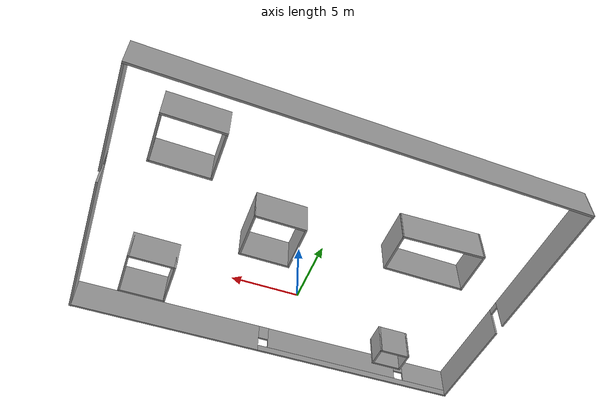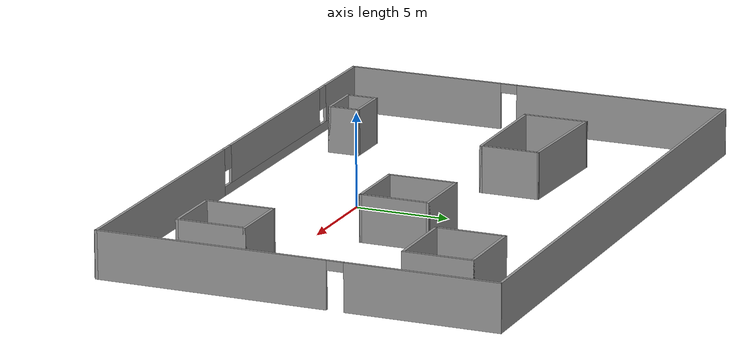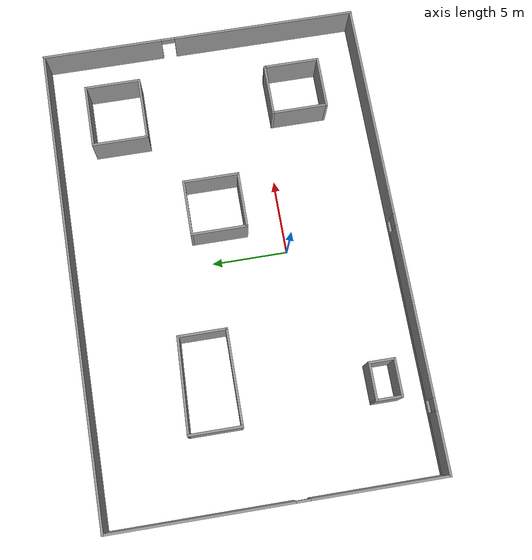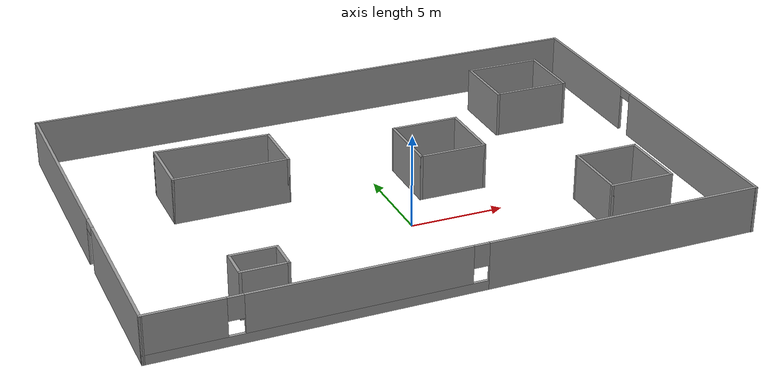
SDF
<?xml version='1.0'?>
<sdf version='1.7'>
  <model name='test_barn1'>
    <pose>-0.174962 3.52054 0 0 -0 0</pose>
    <link name='Wall_10'>
      <pose>15.6549 -0.010057 0 0 -0 -1.5708</pose>
      <visual name='Wall_10_Visual_0'>
        <pose>-6.58638 0 1.25 0 -0 0</pose>
        <geometry>
          <box>
            <size>8.07725 0.15 2.5</size>
          </box>
        </geometry>
        <material>
          <script>
            <uri>file://media/materials/scripts/gazebo.material</uri>
            <name>Gazebo/Grey</name>
          </script>
          <ambient>1 1 1 1</ambient>
        </material>
        <meta>
          <layer>0</layer>
        </meta>
      </visual>
      <collision name='Wall_10_Collision_0'>
        <geometry>
          <box>
            <size>8.07725 0.15 2.5</size>
          </box>
        </geometry>
        <pose>-6.58638 0 1.25 0 -0 0</pose>
      </collision>
      <visual name='Wall_10_Visual_1'>
        <pose>4.48862 0 1.25 0 -0 0</pose>
        <geometry>
          <box>
            <size>12.2728 0.15 2.5</size>
          </box>
        </geometry>
        <material>
          <script>
            <uri>file://media/materials/scripts/gazebo.material</uri>
            <name>Gazebo/Grey</name>
          </script>
          <ambient>1 1 1 1</ambient>
        </material>
        <meta>
          <layer>0</layer>
        </meta>
      </visual>
      <collision name='Wall_10_Collision_1'>
        <geometry>
          <box>
            <size>12.2728 0.15 2.5</size>
          </box>
        </geometry>
        <pose>4.48862 0 1.25 0 -0 0</pose>
      </collision>
      <visual name='Wall_10_Visual_2'>
        <pose>-2.09775 0 2.25 0 -0 0</pose>
        <geometry>
          <box>
            <size>0.9 0.15 0.5</size>
          </box>
        </geometry>
        <material>
          <script>
            <uri>file://media/materials/scripts/gazebo.material</uri>
            <name>Gazebo/Grey</name>
          </script>
          <ambient>1 1 1 1</ambient>
        </material>
        <meta>
          <layer>0</layer>
        </meta>
      </visual>
      <collision name='Wall_10_Collision_2'>
        <geometry>
          <box>
            <size>0.9 0.15 0.5</size>
          </box>
        </geometry>
        <pose>-2.09775 0 2.25 0 -0 0</pose>
      </collision>
    </link>
    <link name='Wall_11'>
      <pose>-0 -10.55 0 0 -0 -3.14095</pose>
      <visual name='Wall_11_Visual_0'>
        <pose>-8.38086 0 1.25 0 -0 0</pose>
        <geometry>
          <box>
            <size>14.6981 0.15 2.5</size>
          </box>
        </geometry>
        <material>
          <script>
            <uri>file://media/materials/scripts/gazebo.material</uri>
            <name>Gazebo/Grey</name>
          </script>
          <ambient>1 1 1 1</ambient>
        </material>
        <meta>
          <layer>0</layer>
        </meta>
      </visual>
      <collision name='Wall_11_Collision_0'>
        <geometry>
          <box>
            <size>14.6981 0.15 2.5</size>
          </box>
        </geometry>
        <pose>-8.38086 0 1.25 0 -0 0</pose>
      </collision>
      <visual name='Wall_11_Visual_1'>
        <pose>7.34903 0 0.25 0 -0 0</pose>
        <geometry>
          <box>
            <size>16.7617 0.15 0.5</size>
          </box>
        </geometry>
        <material>
          <script>
            <uri>file://media/materials/scripts/gazebo.material</uri>
            <name>Gazebo/Grey</name>
          </script>
          <ambient>1 1 1 1</ambient>
        </material>
        <meta>
          <layer>0</layer>
        </meta>
      </visual>
      <collision name='Wall_11_Collision_1'>
        <geometry>
          <box>
            <size>16.7617 0.15 0.5</size>
          </box>
        </geometry>
        <pose>7.34903 0 0.25 0 -0 0</pose>
      </collision>
      <visual name='Wall_11_Visual_2'>
        <pose>5.3519 0 1.5 0 -0 0</pose>
        <geometry>
          <box>
            <size>11.1675 0.15 2</size>
          </box>
        </geometry>
        <material>
          <script>
            <uri>file://media/materials/scripts/gazebo.material</uri>
            <name>Gazebo/Grey</name>
          </script>
          <ambient>1 1 1 1</ambient>
        </material>
        <meta>
          <layer>0</layer>
        </meta>
      </visual>
      <collision name='Wall_11_Collision_2'>
        <geometry>
          <box>
            <size>11.1675 0.15 2</size>
          </box>
        </geometry>
        <pose>5.3519 0 1.5 0 -0 0</pose>
      </collision>
      <visual name='Wall_11_Visual_3'>
        <pose>13.7328 0 1.5 0 -0 0</pose>
        <geometry>
          <box>
            <size>3.99426 0.15 2</size>
          </box>
        </geometry>
        <material>
          <script>
            <uri>file://media/materials/scripts/gazebo.material</uri>
            <name>Gazebo/Grey</name>
          </script>
          <ambient>1 1 1 1</ambient>
        </material>
        <meta>
          <layer>0</layer>
        </meta>
      </visual>
      <collision name='Wall_11_Collision_3'>
        <geometry>
          <box>
            <size>3.99426 0.15 2</size>
          </box>
        </geometry>
        <pose>13.7328 0 1.5 0 -0 0</pose>
      </collision>
      <visual name='Wall_11_Visual_4'>
        <pose>-0.631828 0 1.9 0 -0 0</pose>
        <geometry>
          <box>
            <size>0.8 0.15 1.2</size>
          </box>
        </geometry>
        <material>
          <script>
            <uri>file://media/materials/scripts/gazebo.material</uri>
            <name>Gazebo/Grey</name>
          </script>
          <ambient>1 1 1 1</ambient>
        </material>
        <meta>
          <layer>0</layer>
        </meta>
      </visual>
      <collision name='Wall_11_Collision_4'>
        <geometry>
          <box>
            <size>0.8 0.15 1.2</size>
          </box>
        </geometry>
        <pose>-0.631828 0 1.9 0 -0 0</pose>
      </collision>
      <visual name='Wall_11_Visual_5'>
        <pose>11.3356 0 1.9 0 -0 0</pose>
        <geometry>
          <box>
            <size>0.8 0.15 1.2</size>
          </box>
        </geometry>
        <material>
          <script>
            <uri>file://media/materials/scripts/gazebo.material</uri>
            <name>Gazebo/Grey</name>
          </script>
          <ambient>1 1 1 1</ambient>
        </material>
        <meta>
          <layer>0</layer>
        </meta>
      </visual>
      <collision name='Wall_11_Collision_5'>
        <geometry>
          <box>
            <size>0.8 0.15 1.2</size>
          </box>
        </geometry>
        <pose>11.3356 0 1.9 0 -0 0</pose>
      </collision>
    </link>
    <link name='Wall_12'>
      <pose>-15.6549 -0.010057 0 0 -0 1.5708</pose>
      <visual name='Wall_12_Visual_0'>
        <pose>-6.31896 0 1.25 0 -0 0</pose>
        <geometry>
          <box>
            <size>8.61208 0.15 2.5</size>
          </box>
        </geometry>
        <material>
          <script>
            <uri>file://media/materials/scripts/gazebo.material</uri>
            <name>Gazebo/Grey</name>
          </script>
          <ambient>1 1 1 1</ambient>
        </material>
        <meta>
          <layer>0</layer>
        </meta>
      </visual>
      <collision name='Wall_12_Collision_0'>
        <geometry>
          <box>
            <size>8.61208 0.15 2.5</size>
          </box>
        </geometry>
        <pose>-6.31896 0 1.25 0 -0 0</pose>
      </collision>
      <visual name='Wall_12_Visual_1'>
        <pose>4.75604 0 1.25 0 -0 0</pose>
        <geometry>
          <box>
            <size>11.7379 0.15 2.5</size>
          </box>
        </geometry>
        <material>
          <script>
            <uri>file://media/materials/scripts/gazebo.material</uri>
            <name>Gazebo/Grey</name>
          </script>
          <ambient>1 1 1 1</ambient>
        </material>
        <meta>
          <layer>0</layer>
        </meta>
      </visual>
      <collision name='Wall_12_Collision_1'>
        <geometry>
          <box>
            <size>11.7379 0.15 2.5</size>
          </box>
        </geometry>
        <pose>4.75604 0 1.25 0 -0 0</pose>
      </collision>
      <visual name='Wall_12_Visual_2'>
        <pose>-1.56292 0 2.25 0 -0 0</pose>
        <geometry>
          <box>
            <size>0.9 0.15 0.5</size>
          </box>
        </geometry>
        <material>
          <script>
            <uri>file://media/materials/scripts/gazebo.material</uri>
            <name>Gazebo/Grey</name>
          </script>
          <ambient>1 1 1 1</ambient>
        </material>
        <meta>
          <layer>0</layer>
        </meta>
      </visual>
      <collision name='Wall_12_Collision_2'>
        <geometry>
          <box>
            <size>0.9 0.15 0.5</size>
          </box>
        </geometry>
        <pose>-1.56292 0 2.25 0 -0 0</pose>
      </collision>
    </link>
    <link name='Wall_14'>
      <collision name='Wall_14_Collision'>
        <geometry>
          <box>
            <size>2.5 0.15 2.5</size>
          </box>
        </geometry>
        <pose>0 0 1.25 0 -0 0</pose>
      </collision>
      <visual name='Wall_14_Visual'>
        <pose>0 0 1.25 0 -0 0</pose>
        <geometry>
          <box>
            <size>2.5 0.15 2.5</size>
          </box>
        </geometry>
        <material>
          <script>
            <uri>file://media/materials/scripts/gazebo.material</uri>
            <name>Gazebo/Grey</name>
          </script>
          <ambient>1 1 1 1</ambient>
        </material>
        <meta>
          <layer>0</layer>
        </meta>
      </visual>
      <pose>-9.35278 -7.07648 0 0 -0 0</pose>
    </link>
    <link name='Wall_15'>
      <collision name='Wall_15_Collision'>
        <geometry>
          <box>
            <size>1.75 0.15 2.5</size>
          </box>
        </geometry>
        <pose>0 0 1.25 0 -0 0</pose>
      </collision>
      <visual name='Wall_15_Visual'>
        <pose>0 0 1.25 0 -0 0</pose>
        <geometry>
          <box>
            <size>1.75 0.15 2.5</size>
          </box>
        </geometry>
        <material>
          <script>
            <uri>file://media/materials/scripts/gazebo.material</uri>
            <name>Gazebo/Grey</name>
          </script>
          <ambient>1 1 1 1</ambient>
        </material>
        <meta>
          <layer>0</layer>
        </meta>
      </visual>
      <pose>-8.17778 -7.87648 0 0 -0 -1.5708</pose>
    </link>
    <link name='Wall_16'>
      <collision name='Wall_16_Collision'>
        <geometry>
          <box>
            <size>2.5 0.15 2.5</size>
          </box>
        </geometry>
        <pose>0 0 1.25 0 -0 0</pose>
      </collision>
      <visual name='Wall_16_Visual'>
        <pose>0 0 1.25 0 -0 0</pose>
        <geometry>
          <box>
            <size>2.5 0.15 2.5</size>
          </box>
        </geometry>
        <material>
          <script>
            <uri>file://media/materials/scripts/gazebo.material</uri>
            <name>Gazebo/Grey</name>
          </script>
          <ambient>1 1 1 1</ambient>
        </material>
        <meta>
          <layer>0</layer>
        </meta>
      </visual>
      <pose>-9.35278 -8.67647 0 0 -0 3.14159</pose>
    </link>
    <link name='Wall_17'>
      <collision name='Wall_17_Collision'>
        <geometry>
          <box>
            <size>1.75 0.15 2.5</size>
          </box>
        </geometry>
        <pose>0 0 1.25 0 -0 0</pose>
      </collision>
      <visual name='Wall_17_Visual'>
        <pose>0 0 1.25 0 -0 0</pose>
        <geometry>
          <box>
            <size>1.75 0.15 2.5</size>
          </box>
        </geometry>
        <material>
          <script>
            <uri>file://media/materials/scripts/gazebo.material</uri>
            <name>Gazebo/Grey</name>
          </script>
          <ambient>1 1 1 1</ambient>
        </material>
        <meta>
          <layer>0</layer>
        </meta>
      </visual>
      <pose>-10.5278 -7.87648 0 0 -0 1.5708</pose>
    </link>
    <link name='Wall_19'>
      <collision name='Wall_19_Collision'>
        <geometry>
          <box>
            <size>3.75 0.15 2.5</size>
          </box>
        </geometry>
        <pose>0 0 1.25 0 -0 0</pose>
      </collision>
      <visual name='Wall_19_Visual'>
        <pose>0 0 1.25 0 -0 0</pose>
        <geometry>
          <box>
            <size>3.75 0.15 2.5</size>
          </box>
        </geometry>
        <material>
          <script>
            <uri>file://media/materials/scripts/gazebo.material</uri>
            <name>Gazebo/Grey</name>
          </script>
          <ambient>1 1 1 1</ambient>
        </material>
        <meta>
          <layer>0</layer>
        </meta>
      </visual>
      <pose>1.75823 0.750306 0 0 -0 -1.5708</pose>
    </link>
    <link name='Wall_20'>
      <collision name='Wall_20_Collision'>
        <geometry>
          <box>
            <size>3.75 0.15 2.5</size>
          </box>
        </geometry>
        <pose>0 0 1.25 0 -0 0</pose>
      </collision>
      <visual name='Wall_20_Visual'>
        <pose>0 0 1.25 0 -0 0</pose>
        <geometry>
          <box>
            <size>3.75 0.15 2.5</size>
          </box>
        </geometry>
        <material>
          <script>
            <uri>file://media/materials/scripts/gazebo.material</uri>
            <name>Gazebo/Grey</name>
          </script>
          <ambient>1 1 1 1</ambient>
        </material>
        <meta>
          <layer>0</layer>
        </meta>
      </visual>
      <pose>3.55823 -1.04969 0 0 -0 0</pose>
    </link>
    <link name='Wall_21'>
      <collision name='Wall_21_Collision'>
        <geometry>
          <box>
            <size>3.75 0.15 2.5</size>
          </box>
        </geometry>
        <pose>0 0 1.25 0 -0 0</pose>
      </collision>
      <visual name='Wall_21_Visual'>
        <pose>0 0 1.25 0 -0 0</pose>
        <geometry>
          <box>
            <size>3.75 0.15 2.5</size>
          </box>
        </geometry>
        <material>
          <script>
            <uri>file://media/materials/scripts/gazebo.material</uri>
            <name>Gazebo/Grey</name>
          </script>
          <ambient>1 1 1 1</ambient>
        </material>
        <meta>
          <layer>0</layer>
        </meta>
      </visual>
      <pose>5.35823 0.750306 0 0 -0 1.5708</pose>
    </link>
    <link name='Wall_22'>
      <collision name='Wall_22_Collision'>
        <geometry>
          <box>
            <size>3.75 0.15 2.5</size>
          </box>
        </geometry>
        <pose>0 0 1.25 0 -0 0</pose>
      </collision>
      <visual name='Wall_22_Visual'>
        <pose>0 0 1.25 0 -0 0</pose>
        <geometry>
          <box>
            <size>3.75 0.15 2.5</size>
          </box>
        </geometry>
        <material>
          <script>
            <uri>file://media/materials/scripts/gazebo.material</uri>
            <name>Gazebo/Grey</name>
          </script>
          <ambient>1 1 1 1</ambient>
        </material>
        <meta>
          <layer>0</layer>
        </meta>
      </visual>
      <pose>3.55823 2.55031 0 0 -0 3.14159</pose>
    </link>
    <link name='Wall_24'>
      <collision name='Wall_24_Collision'>
        <geometry>
          <box>
            <size>3.5 0.15 2.5</size>
          </box>
        </geometry>
        <pose>0 0 1.25 0 -0 0</pose>
      </collision>
      <visual name='Wall_24_Visual'>
        <pose>0 0 1.25 0 -0 0</pose>
        <geometry>
          <box>
            <size>3.5 0.15 2.5</size>
          </box>
        </geometry>
        <material>
          <script>
            <uri>file://media/materials/scripts/gazebo.material</uri>
            <name>Gazebo/Grey</name>
          </script>
          <ambient>1 1 1 1</ambient>
        </material>
        <meta>
          <layer>0</layer>
        </meta>
      </visual>
      <pose>-10.7524 2.98723 0 0 -0 -1.5708</pose>
    </link>
    <link name='Wall_25'>
      <collision name='Wall_25_Collision'>
        <geometry>
          <box>
            <size>6.25 0.15 2.5</size>
          </box>
        </geometry>
        <pose>0 0 1.25 0 -0 0</pose>
      </collision>
      <visual name='Wall_25_Visual'>
        <pose>0 0 1.25 0 -0 0</pose>
        <geometry>
          <box>
            <size>6.25 0.15 2.5</size>
          </box>
        </geometry>
        <material>
          <script>
            <uri>file://media/materials/scripts/gazebo.material</uri>
            <name>Gazebo/Grey</name>
          </script>
          <ambient>1 1 1 1</ambient>
        </material>
        <meta>
          <layer>0</layer>
        </meta>
      </visual>
      <pose>-7.70241 1.31223 0 0 -0 0</pose>
    </link>
    <link name='Wall_26'>
      <collision name='Wall_26_Collision'>
        <geometry>
          <box>
            <size>3.25 0.15 2.5</size>
          </box>
        </geometry>
        <pose>0 0 1.25 0 -0 0</pose>
      </collision>
      <visual name='Wall_26_Visual'>
        <pose>0 0 1.25 0 -0 0</pose>
        <geometry>
          <box>
            <size>3.25 0.15 2.5</size>
          </box>
        </geometry>
        <material>
          <script>
            <uri>file://media/materials/scripts/gazebo.material</uri>
            <name>Gazebo/Grey</name>
          </script>
          <ambient>1 1 1 1</ambient>
        </material>
        <meta>
          <layer>0</layer>
        </meta>
      </visual>
      <pose>-4.65241 2.86223 0 0 -0 1.5708</pose>
    </link>
    <link name='Wall_27'>
      <collision name='Wall_27_Collision'>
        <geometry>
          <box>
            <size>6.25512 0.15 2.5</size>
          </box>
        </geometry>
        <pose>0 0 1.25 0 -0 0</pose>
      </collision>
      <visual name='Wall_27_Visual'>
        <pose>0 0 1.25 0 -0 0</pose>
        <geometry>
          <box>
            <size>6.25512 0.15 2.5</size>
          </box>
        </geometry>
        <material>
          <script>
            <uri>file://media/materials/scripts/gazebo.material</uri>
            <name>Gazebo/Grey</name>
          </script>
          <ambient>1 1 1 1</ambient>
        </material>
        <meta>
          <layer>0</layer>
        </meta>
      </visual>
      <pose>-7.70241 4.53723 0 0 -0 3.10063</pose>
    </link>
    <link name='Wall_29'>
      <collision name='Wall_29_Collision'>
        <geometry>
          <box>
            <size>3.75 0.15 2.5</size>
          </box>
        </geometry>
        <pose>0 0 1.25 0 -0 0</pose>
      </collision>
      <visual name='Wall_29_Visual'>
        <pose>0 0 1.25 0 -0 0</pose>
        <geometry>
          <box>
            <size>3.75 0.15 2.5</size>
          </box>
        </geometry>
        <material>
          <script>
            <uri>file://media/materials/scripts/gazebo.material</uri>
            <name>Gazebo/Grey</name>
          </script>
          <ambient>1 1 1 1</ambient>
        </material>
        <meta>
          <layer>0</layer>
        </meta>
      </visual>
      <pose>9.20855 -5.87253 0 0 -0 1.5708</pose>
    </link>
    <link name='Wall_30'>
      <collision name='Wall_30_Collision'>
        <geometry>
          <box>
            <size>3.5 0.15 2.5</size>
          </box>
        </geometry>
        <pose>0 0 1.25 0 -0 0</pose>
      </collision>
      <visual name='Wall_30_Visual'>
        <pose>0 0 1.25 0 -0 0</pose>
        <geometry>
          <box>
            <size>3.5 0.15 2.5</size>
          </box>
        </geometry>
        <material>
          <script>
            <uri>file://media/materials/scripts/gazebo.material</uri>
            <name>Gazebo/Grey</name>
          </script>
          <ambient>1 1 1 1</ambient>
        </material>
        <meta>
          <layer>0</layer>
        </meta>
      </visual>
      <pose>10.8835 -4.07253 0 0 -0 0</pose>
    </link>
    <link name='Wall_31'>
      <collision name='Wall_31_Collision'>
        <geometry>
          <box>
            <size>3.75 0.15 2.5</size>
          </box>
        </geometry>
        <pose>0 0 1.25 0 -0 0</pose>
      </collision>
      <visual name='Wall_31_Visual'>
        <pose>0 0 1.25 0 -0 0</pose>
        <geometry>
          <box>
            <size>3.75 0.15 2.5</size>
          </box>
        </geometry>
        <material>
          <script>
            <uri>file://media/materials/scripts/gazebo.material</uri>
            <name>Gazebo/Grey</name>
          </script>
          <ambient>1 1 1 1</ambient>
        </material>
        <meta>
          <layer>0</layer>
        </meta>
      </visual>
      <pose>12.5585 -5.87253 0 0 -0 -1.5708</pose>
    </link>
    <link name='Wall_32'>
      <collision name='Wall_32_Collision'>
        <geometry>
          <box>
            <size>3.5 0.15 2.5</size>
          </box>
        </geometry>
        <pose>0 0 1.25 0 -0 0</pose>
      </collision>
      <visual name='Wall_32_Visual'>
        <pose>0 0 1.25 0 -0 0</pose>
        <geometry>
          <box>
            <size>3.5 0.15 2.5</size>
          </box>
        </geometry>
        <material>
          <script>
            <uri>file://media/materials/scripts/gazebo.material</uri>
            <name>Gazebo/Grey</name>
          </script>
          <ambient>1 1 1 1</ambient>
        </material>
        <meta>
          <layer>0</layer>
        </meta>
      </visual>
      <pose>10.8835 -7.67253 0 0 -0 3.14159</pose>
    </link>
    <link name='Wall_34'>
      <collision name='Wall_34_Collision'>
        <geometry>
          <box>
            <size>3.75 0.15 2.5</size>
          </box>
        </geometry>
        <pose>0 0 1.25 0 -0 0</pose>
      </collision>
      <visual name='Wall_34_Visual'>
        <pose>0 0 1.25 0 -0 0</pose>
        <geometry>
          <box>
            <size>3.75 0.15 2.5</size>
          </box>
        </geometry>
        <material>
          <script>
            <uri>file://media/materials/scripts/gazebo.material</uri>
            <name>Gazebo/Grey</name>
          </script>
          <ambient>1 1 1 1</ambient>
        </material>
        <meta>
          <layer>0</layer>
        </meta>
      </visual>
      <pose>8.87205 6.25084 0 0 -0 -1.5708</pose>
    </link>
    <link name='Wall_35'>
      <collision name='Wall_35_Collision'>
        <geometry>
          <box>
            <size>4.25 0.15 2.5</size>
          </box>
        </geometry>
        <pose>0 0 1.25 0 -0 0</pose>
      </collision>
      <visual name='Wall_35_Visual'>
        <pose>0 0 1.25 0 -0 0</pose>
        <geometry>
          <box>
            <size>4.25 0.15 2.5</size>
          </box>
        </geometry>
        <material>
          <script>
            <uri>file://media/materials/scripts/gazebo.material</uri>
            <name>Gazebo/Grey</name>
          </script>
          <ambient>1 1 1 1</ambient>
        </material>
        <meta>
          <layer>0</layer>
        </meta>
      </visual>
      <pose>10.9221 4.45085 0 0 -0 0</pose>
    </link>
    <link name='Wall_36'>
      <collision name='Wall_36_Collision'>
        <geometry>
          <box>
            <size>3.75 0.15 2.5</size>
          </box>
        </geometry>
        <pose>0 0 1.25 0 -0 0</pose>
      </collision>
      <visual name='Wall_36_Visual'>
        <pose>0 0 1.25 0 -0 0</pose>
        <geometry>
          <box>
            <size>3.75 0.15 2.5</size>
          </box>
        </geometry>
        <material>
          <script>
            <uri>file://media/materials/scripts/gazebo.material</uri>
            <name>Gazebo/Grey</name>
          </script>
          <ambient>1 1 1 1</ambient>
        </material>
        <meta>
          <layer>0</layer>
        </meta>
      </visual>
      <pose>12.9721 6.25084 0 0 -0 1.5708</pose>
    </link>
    <link name='Wall_37'>
      <collision name='Wall_37_Collision'>
        <geometry>
          <box>
            <size>4.25 0.15 2.5</size>
          </box>
        </geometry>
        <pose>0 0 1.25 0 -0 0</pose>
      </collision>
      <visual name='Wall_37_Visual'>
        <pose>0 0 1.25 0 -0 0</pose>
        <geometry>
          <box>
            <size>4.25 0.15 2.5</size>
          </box>
        </geometry>
        <material>
          <script>
            <uri>file://media/materials/scripts/gazebo.material</uri>
            <name>Gazebo/Grey</name>
          </script>
          <ambient>1 1 1 1</ambient>
        </material>
        <meta>
          <layer>0</layer>
        </meta>
      </visual>
      <pose>10.9221 8.05085 0 0 -0 3.14159</pose>
    </link>
    <link name='Wall_9'>
      <collision name='Wall_9_Collision'>
        <geometry>
          <box>
            <size>31.4598 0.15 2.5</size>
          </box>
        </geometry>
        <pose>0 0 1.25 0 -0 0</pose>
      </collision>
      <visual name='Wall_9_Visual'>
        <pose>0 0 1.25 0 -0 0</pose>
        <geometry>
          <box>
            <size>31.4598 0.15 2.5</size>
          </box>
        </geometry>
        <material>
          <script>
            <uri>file://media/materials/scripts/gazebo.material</uri>
            <name>Gazebo/Grey</name>
          </script>
          <ambient>1 1 1 1</ambient>
        </material>
        <meta>
          <layer>0</layer>
        </meta>
      </visual>
      <pose>-0 10.55 0 0 -0 0.000642</pose>
    </link>
    <static>1</static>
  </model>
</sdf>
